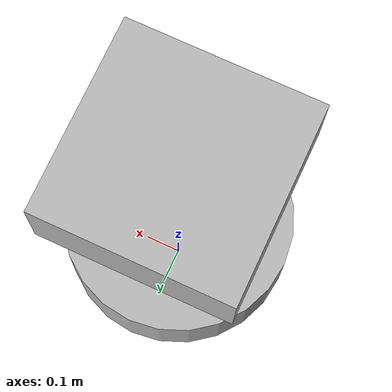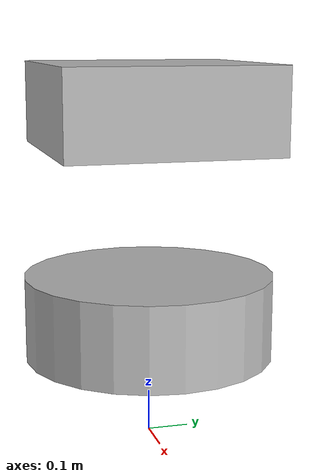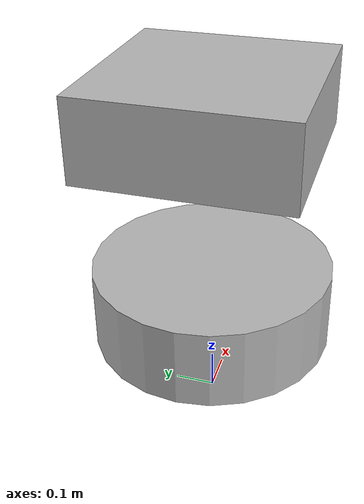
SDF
<sdf version="1.8">

  <model name="quarter_car">

    <plugin
      filename="gz-sim-joint-state-publisher-system"
      name="gz::sim::systems::JointStatePublisher">
      <joint_name>suspension_joint</joint_name>
    </plugin>

    <link name="wheel">
      <pose>0 0 0.3 0 0 0</pose>
      <inertial>
        <mass>40.0</mass>
        <inertia>
          <ixx>1.0</ixx><iyy>1.0</iyy><izz>1.0</izz>
        </inertia>
      </inertial>

      <collision name="collision">
        <geometry><cylinder><radius>0.3</radius><length>0.2</length></cylinder></geometry>
      </collision>
      <visual name="visual">
        <geometry><cylinder><radius>0.3</radius><length>0.2</length></cylinder></geometry>
      </visual>
    </link>

    <link name="body">
      <pose>0 0 0.8 0 0 0</pose>
      <inertial>
        <mass>300.0</mass>
        <inertia>
          <ixx>10.0</ixx><iyy>10.0</iyy><izz>10.0</izz>
        </inertia>
      </inertial>
      <visual name="visual">
        <geometry><box><size>0.5 0.5 0.2</size></box></geometry>
      </visual>
    </link>

    <joint name="suspension_joint" type="prismatic">
      <parent>wheel</parent>
      <child>body</child>
      <axis>
        <xyz>0 0 1</xyz> <dynamics>
          <damping>1500.0</damping>   <spring_stiffness>20000.0</spring_stiffness> <spring_reference>0.5</spring_reference> </dynamics>
      </axis>
    </joint>

  </model>

</sdf>
